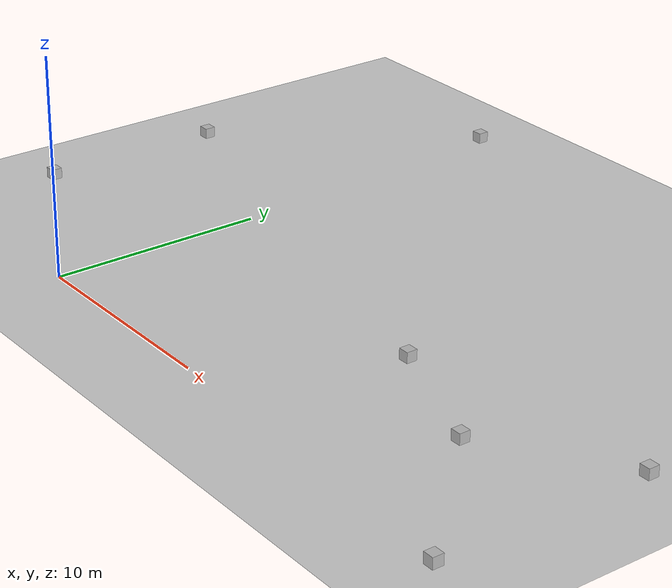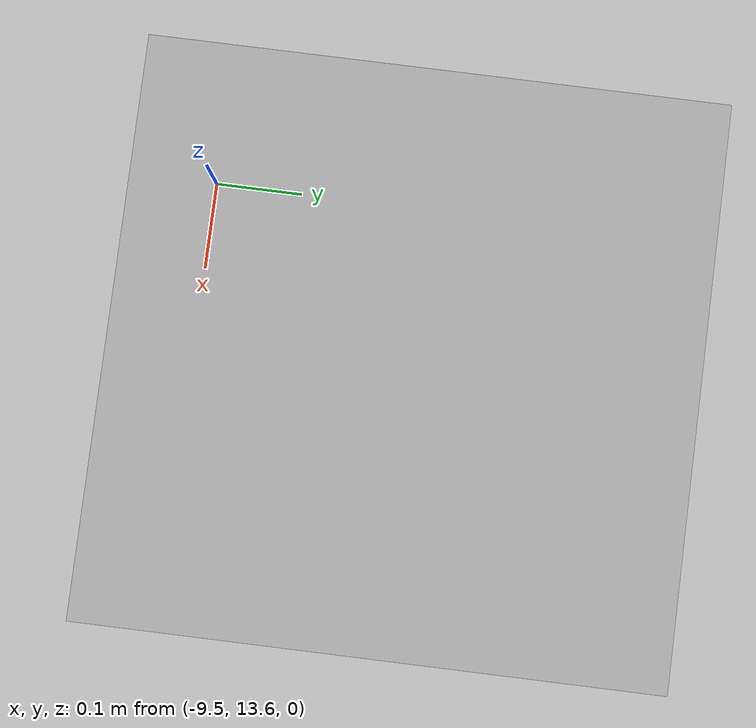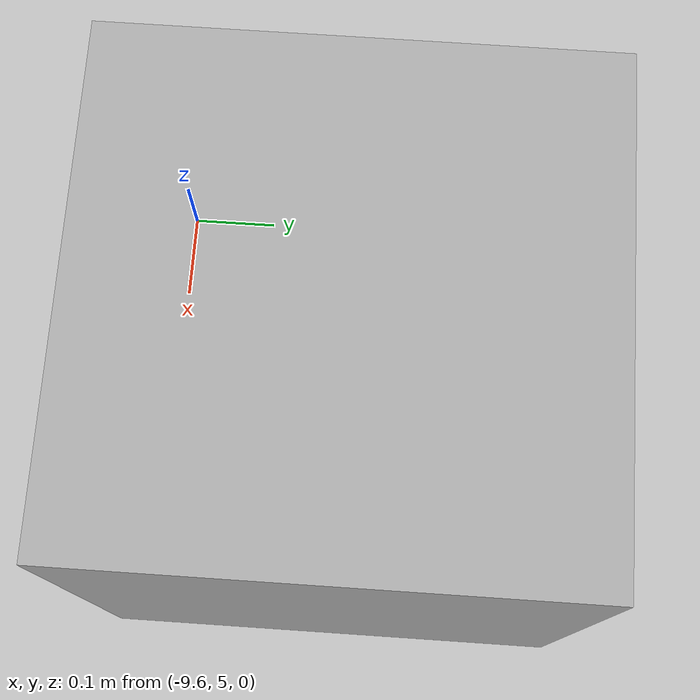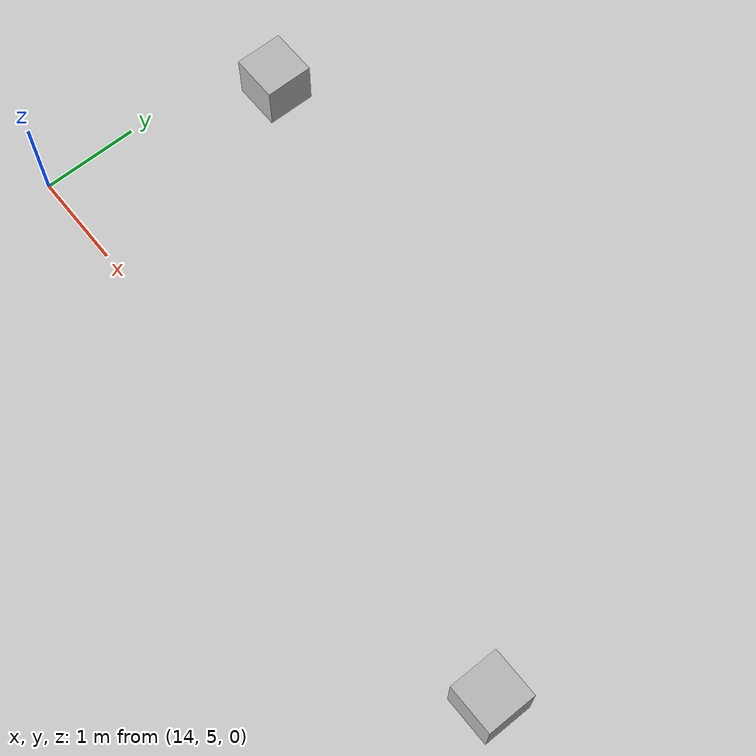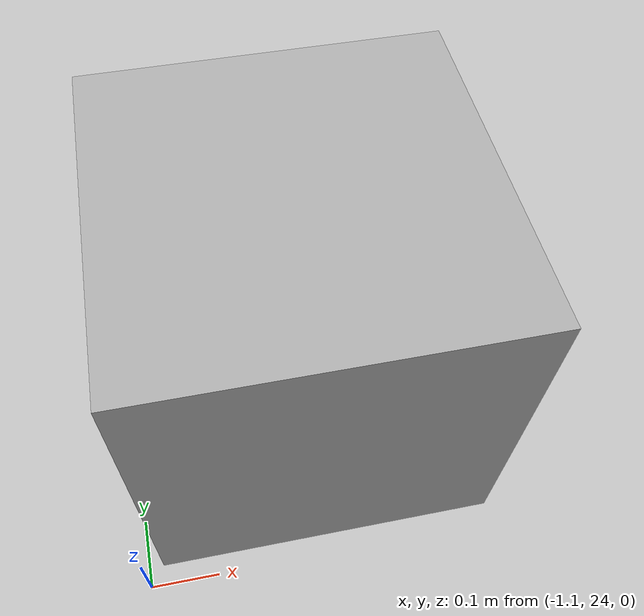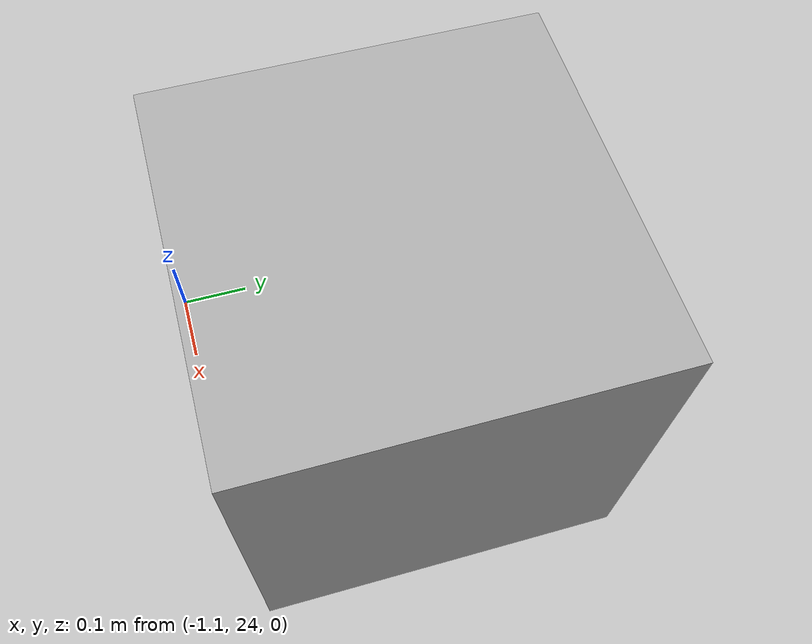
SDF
<sdf version="1.6">
 <world name="default">
  <model name="ground_plane">
   <static>1</static>
   <link name="link">
    <collision name="collision">
     <geometry><plane><normal>0 0 1</normal><size>100 100</size></plane></geometry>
     <surface><friction><ode><mu>100</mu><mu2>50</mu2></ode></friction></surface>
    </collision>
    <visual name="visual">
     <cast_shadows>0</cast_shadows>
     <geometry><plane><normal>0 0 1</normal><size>100 100</size></plane></geometry>
     <material>
      <script><uri>file://media/materials/scripts/gazebo.material</uri><name>Gazebo/Grey</name></script>
     </material>
    </visual>
   </link>
  </model>
  <light name="sun" type="directional">
   <pose>0 0 10 0 -0 0</pose>
   <diffuse>0.8 0.8 0.8 1</diffuse>
   <specular>0.2 0.2 0.2 1</specular>
   <attenuation>
    <range>1000</range>
    <constant>0.9</constant>
    <linear>0.01</linear>
    <quadratic>0.001</quadratic>
   </attenuation>
   <direction>-0.5 0.1 -0.9</direction>
  </light>
  <gravity>0 0 -9.8</gravity>
  <magnetic_field>6e-06 2.3e-05 -4.2e-05</magnetic_field>
  <atmosphere type="adiabatic"/>
  <physics name="default_physics" default="0" type="ode">
   <max_step_size>0.001</max_step_size>
   <real_time_factor>1</real_time_factor>
   <real_time_update_rate>1000</real_time_update_rate>
  </physics>
  <scene><ambient>0.4 0.4 0.4 1</ambient><background>0.7 0.7 0.7 1</background><shadows>1</shadows></scene>
  <spherical_coordinates>
   <surface_model>EARTH_WGS84</surface_model>
   <latitude_deg>0</latitude_deg>
   <longitude_deg>0</longitude_deg>
   <elevation>0</elevation>
   <heading_deg>0</heading_deg>
  </spherical_coordinates>
  <model name="tag_cube_0">
   <link name="link">
    <pose>0 0 0.3 0 -0 0</pose>
    <collision name="collision"><geometry><box><size>0.5 0.5 0.5</size></box></geometry></collision>
    <visual name="visual">
     <geometry><box><size>0.5 0.5 0.5</size></box></geometry>
     <material>
      <script>
       <uri>model://tag_cube_0/materials/scripts</uri>
       <uri>model://tag_cube_0/materials/textures</uri>
       <name>Tag0/Diffuse</name>
      </script>
     </material>
    </visual>
    <inertial>
     <inertia><ixx>1</ixx><ixy>0</ixy><ixz>0</ixz><iyy>1</iyy><iyz>0</iyz><izz>1</izz></inertia>
     <mass>1</mass>
    </inertial>
   </link>
   <pose>-9.27241 13.8476 -0.05 0 2e-06 1e-06</pose>
  </model>
  <model name="tag_cube_0_0">
   <link name="link">
    <pose>0 0 0.3 0 -0 0</pose>
    <collision name="collision"><geometry><box><size>0.5 0.5 0.5</size></box></geometry></collision>
    <visual name="visual">
     <geometry><box><size>0.5 0.5 0.5</size></box></geometry>
     <material>
      <script>
       <uri>model://tag_cube_0/materials/scripts</uri>
       <uri>model://tag_cube_0/materials/textures</uri>
       <name>Tag0/Diffuse</name>
      </script>
     </material>
    </visual>
    <inertial>
     <inertia><ixx>1</ixx><ixy>0</ixy><ixz>0</ixz><iyy>1</iyy><iyz>0</iyz><izz>1</izz></inertia>
     <mass>1</mass>
    </inertial>
   </link>
   <pose>-9.33602 5.21044 -0.050001 1e-06 1e-06 -1e-06</pose>
  </model>
  <model name="tag_cube_0_1">
   <link name="link">
    <pose>0 0 0.3 0 -0 0</pose>
    <collision name="collision"><geometry><box><size>0.5 0.5 0.5</size></box></geometry></collision>
    <visual name="visual">
     <geometry><box><size>0.5 0.5 0.5</size></box></geometry>
     <material>
      <script>
       <uri>model://tag_cube_0/materials/scripts</uri>
       <uri>model://tag_cube_0/materials/textures</uri>
       <name>Tag0/Diffuse</name>
      </script>
     </material>
    </visual>
    <inertial>
     <inertia><ixx>1</ixx><ixy>0</ixy><ixz>0</ixz><iyy>1</iyy><iyz>0</iyz><izz>1</izz></inertia>
     <mass>1</mass>
    </inertial>
   </link>
   <pose>26.2002 -0.841336 -0.050001 1e-06 -2e-06 1e-06</pose>
  </model>
  <model name="tag_cube_0_2">
   <link name="link">
    <pose>0 0 0.3 0 -0 0</pose>
    <collision name="collision"><geometry><box><size>0.5 0.5 0.5</size></box></geometry></collision>
    <visual name="visual">
     <geometry><box><size>0.5 0.5 0.5</size></box></geometry>
     <material>
      <script>
       <uri>model://tag_cube_0/materials/scripts</uri>
       <uri>model://tag_cube_0/materials/textures</uri>
       <name>Tag0/Diffuse</name>
      </script>
     </material>
    </visual>
    <inertial>
     <inertia><ixx>1</ixx><ixy>0</ixy><ixz>0</ixz><iyy>1</iyy><iyz>0</iyz><izz>1</izz></inertia>
     <mass>1</mass>
    </inertial>
   </link>
   <pose>20.5694 5.05617 -0.050001 -2e-06 1e-06 -0</pose>
  </model>
  <model name="tag_cube_1">
   <link name="link">
    <pose>0 0 0.3 0 -0 0</pose>
    <collision name="collision"><geometry><box><size>0.5 0.5 0.5</size></box></geometry></collision>
    <visual name="visual">
     <geometry><box><size>0.5 0.5 0.5</size></box></geometry>
     <material>
      <script>
       <uri>model://tag_cube_1/materials/scripts</uri>
       <uri>model://tag_cube_1/materials/textures</uri>
       <name>Tag1/Diffuse</name>
      </script>
     </material>
    </visual>
    <inertial>
     <inertia><ixx>1</ixx><ixy>0</ixy><ixz>0</ixz><iyy>1</iyy><iyz>0</iyz><izz>1</izz></inertia>
     <mass>1</mass>
    </inertial>
   </link>
   <pose>26.4484 8.92175 -0.050001 2e-06 1e-06 2e-06</pose>
  </model>
  <model name="tag_cube_2_0">
   <link name="link">
    <pose>0 0 0.3 0 -0 0</pose>
    <collision name="collision"><geometry><box><size>0.5 0.5 0.5</size></box></geometry></collision>
    <visual name="visual">
     <geometry><box><size>0.5 0.5 0.5</size></box></geometry>
     <material>
      <script>
       <uri>model://tag_cube_2/materials/scripts</uri>
       <uri>model://tag_cube_2/materials/textures</uri>
       <name>Tag2/Diffuse</name>
      </script>
     </material>
    </visual>
    <inertial>
     <inertia><ixx>1</ixx><ixy>0</ixy><ixz>0</ixz><iyy>1</iyy><iyz>0</iyz><izz>1</izz></inertia>
     <mass>1</mass>
    </inertial>
   </link>
   <pose>-0.829415 24.2787 -0.050001 1e-06 -2e-06 2e-06</pose>
  </model>
  <model name="tag_cube_2">
   <link name="link">
    <pose>0 0 0.3 0 -0 0</pose>
    <collision name="collision"><geometry><box><size>0.5 0.5 0.5</size></box></geometry></collision>
    <visual name="visual">
     <geometry><box><size>0.5 0.5 0.5</size></box></geometry>
     <material>
      <script>
       <uri>model://tag_cube_2/materials/scripts</uri>
       <uri>model://tag_cube_2/materials/textures</uri>
       <name>Tag2/Diffuse</name>
      </script>
     </material>
    </visual>
    <inertial>
     <inertia><ixx>1</ixx><ixy>0</ixy><ixz>0</ixz><iyy>1</iyy><iyz>0</iyz><izz>1</izz></inertia>
     <mass>1</mass>
    </inertial>
   </link>
   <pose>14.5578 7.40529 -0.050001 0 -2e-06 0</pose>
  </model>
 </world>
</sdf>
